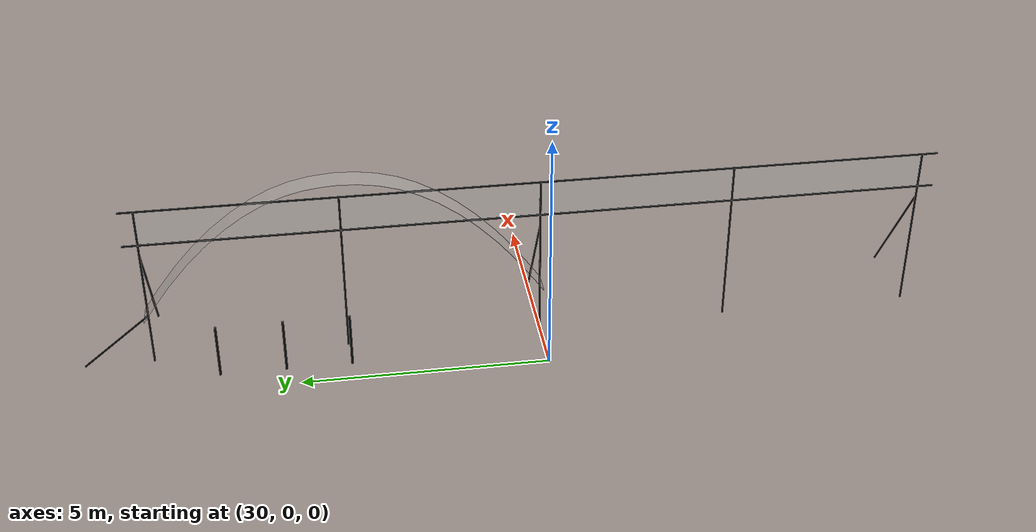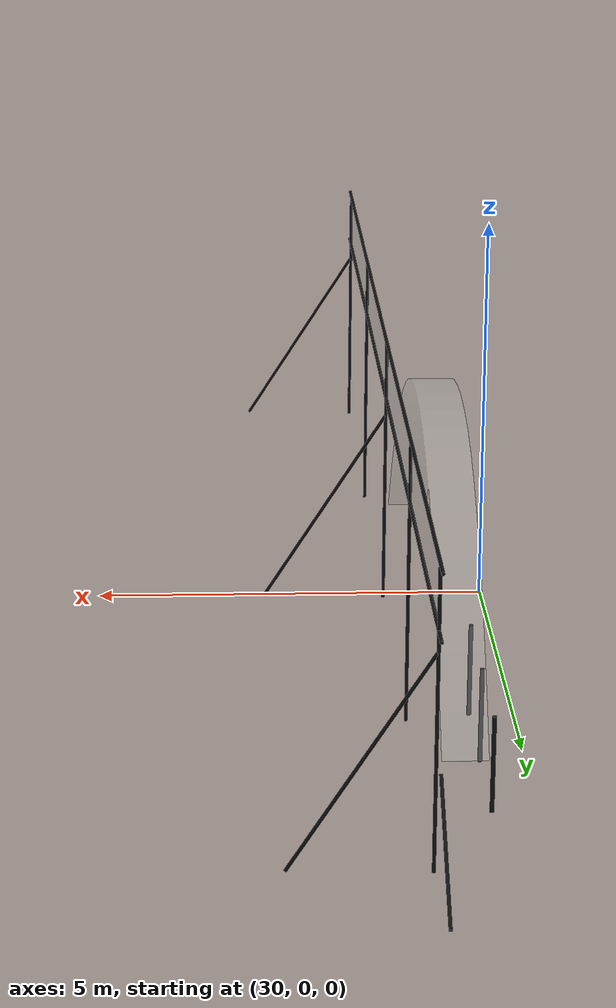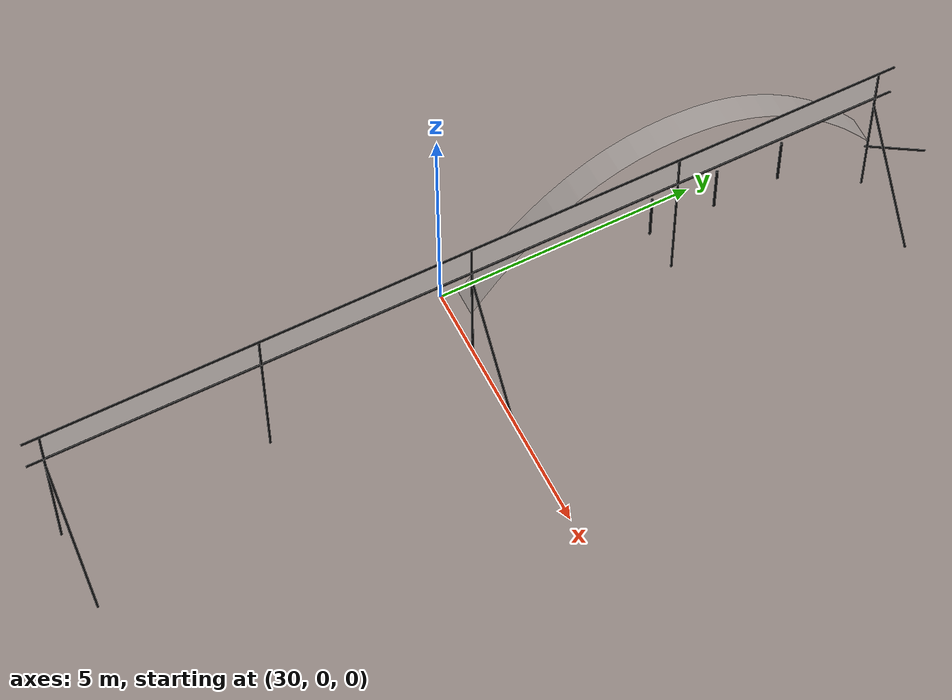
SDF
<sdf version="1.4">
 <world name="default">
  <model name="pole_87">
   <static>1</static>
   <pose>30.520 3.960 0.575 0.0 0.0 0.0</pose>
   <link name="link">
    <collision name="collision">
     <geometry><cylinder><length>1.15</length><radius>0.025</radius></cylinder></geometry>
    </collision>
    <visual name="visual">
     <geometry><cylinder><length>1.15</length><radius>0.025</radius></cylinder></geometry>
     <material>
      <script><uri>file://media/materials/scripts/gazebo.material</uri><name>Gazebo/Chrome</name></script>
      <shader type="vertex"><normal_map>__default__</normal_map></shader>
      <emissive>0.1 0.1 0.1 1</emissive>
      <specular>0.01 0.01 0.01 1</specular>
      <ambient>0.5 0.5 0.5 1</ambient>
      <diffuse>0.05 0.05 0.05 1</diffuse>
     </material>
    </visual>
   </link>
  </model>
  <model name="pole_88">
   <static>1</static>
   <pose>30.520 5.280 0.575 0.0 0.0 0.0</pose>
   <link name="link">
    <collision name="collision">
     <geometry><cylinder><length>1.15</length><radius>0.025</radius></cylinder></geometry>
    </collision>
    <visual name="visual">
     <geometry><cylinder><length>1.15</length><radius>0.025</radius></cylinder></geometry>
     <material>
      <script><uri>file://media/materials/scripts/gazebo.material</uri><name>Gazebo/Chrome</name></script>
      <shader type="vertex"><normal_map>__default__</normal_map></shader>
      <emissive>0.1 0.1 0.1 1</emissive>
      <specular>0.01 0.01 0.01 1</specular>
      <ambient>0.5 0.5 0.5 1</ambient>
      <diffuse>0.05 0.05 0.05 1</diffuse>
     </material>
    </visual>
   </link>
  </model>
  <model name="pole_89">
   <static>1</static>
   <pose>30.520 6.600 0.575 0.0 0.0 0.0</pose>
   <link name="link">
    <collision name="collision">
     <geometry><cylinder><length>1.15</length><radius>0.025</radius></cylinder></geometry>
    </collision>
    <visual name="visual">
     <geometry><cylinder><length>1.15</length><radius>0.025</radius></cylinder></geometry>
     <material>
      <script><uri>file://media/materials/scripts/gazebo.material</uri><name>Gazebo/Chrome</name></script>
      <shader type="vertex"><normal_map>__default__</normal_map></shader>
      <emissive>0.1 0.1 0.1 1</emissive>
      <specular>0.01 0.01 0.01 1</specular>
      <ambient>0.5 0.5 0.5 1</ambient>
      <diffuse>0.05 0.05 0.05 1</diffuse>
     </material>
    </visual>
   </link>
  </model>
  <model name="canopyhalfm_1">
   <static>1</static>
   <pose>30.720 0.000 -0.00 1.5707 0.0 1.5707</pose>
   <link name="link">
    <collision name="collision">
     <geometry><mesh><uri>model://canopyhalfm/canopyhalfm.stl</uri></mesh></geometry>
    </collision>
    <visual name="visual">
     <geometry><mesh><uri>model://canopyhalfm/canopyhalfm.stl</uri></mesh></geometry>
     <transparency>0.65</transparency>
    </visual>
   </link>
  </model>
  <model name="strut_17">
   <static>1</static>
   <pose>31.220 8.620 0.536 0.896 0.0 0.0</pose>
   <link name="link">
    <collision name="collision">
     <geometry><cylinder><length>1.76</length><radius>0.02</radius></cylinder></geometry>
    </collision>
    <visual name="visual">
     <geometry><cylinder><length>1.76</length><radius>0.02</radius></cylinder></geometry>
     <material>
      <script><uri>file://media/materials/scripts/gazebo.material</uri><name>Gazebo/Chrome</name></script>
      <shader type="vertex"><normal_map>__default__</normal_map></shader>
      <emissive>0.1 0.1 0.1 1</emissive>
      <specular>0.01 0.01 0.01 1</specular>
      <ambient>0.5 0.5 0.5 1</ambient>
      <diffuse>0.05 0.05 0.05 1</diffuse>
     </material>
    </visual>
   </link>
  </model>
  <model name="frontage_1">
   <static>1</static>
   <pose>37.950 -0.007 0.0 0.0 0.0 3.141</pose>
   <link name="link_1">
    <collision name="collision">
     <geometry><cylinder><length>3.5</length><radius>0.02</radius></cylinder></geometry>
    </collision>
    <visual name="visual">
     <geometry><cylinder><length>3.5</length><radius>0.02</radius></cylinder></geometry>
     <material>
      <script><uri>file://media/materials/scripts/gazebo.material</uri><name>Gazebo/Chrome</name></script>
      <shader type="vertex"><normal_map>__default__</normal_map></shader>
      <emissive>0.1 0.1 0.1 1</emissive>
      <specular>0.01 0.01 0.01 1</specular>
      <ambient>0.5 0.5 0.5 1</ambient>
      <diffuse>0.05 0.05 0.05 1</diffuse>
     </material>
    </visual>
    <pose>6.68 -7.94 1.7 0.0 0.0 0.0</pose>
   </link>
   <link name="link_2">
    <collision name="collision">
     <geometry><cylinder><length>3.5</length><radius>0.02</radius></cylinder></geometry>
    </collision>
    <visual name="visual">
     <geometry><cylinder><length>3.5</length><radius>0.02</radius></cylinder></geometry>
     <material>
      <script><uri>file://media/materials/scripts/gazebo.material</uri><name>Gazebo/Chrome</name></script>
      <shader type="vertex"><normal_map>__default__</normal_map></shader>
      <emissive>0.1 0.1 0.1 1</emissive>
      <specular>0.01 0.01 0.01 1</specular>
      <ambient>0.5 0.5 0.5 1</ambient>
      <diffuse>0.05 0.05 0.05 1</diffuse>
     </material>
    </visual>
    <pose>6.68 0 1.7 0.0 0.0 0.0</pose>
   </link>
   <link name="link_3">
    <collision name="collision">
     <geometry><cylinder><length>3.5</length><radius>0.02</radius></cylinder></geometry>
    </collision>
    <visual name="visual">
     <geometry><cylinder><length>3.5</length><radius>0.02</radius></cylinder></geometry>
     <material>
      <script><uri>file://media/materials/scripts/gazebo.material</uri><name>Gazebo/Chrome</name></script>
      <shader type="vertex"><normal_map>__default__</normal_map></shader>
      <emissive>0.1 0.1 0.1 1</emissive>
      <specular>0.01 0.01 0.01 1</specular>
      <ambient>0.5 0.5 0.5 1</ambient>
      <diffuse>0.05 0.05 0.05 1</diffuse>
     </material>
    </visual>
    <pose>6.68 7.93 1.7 0.0 0.0 0.0</pose>
   </link>
   <link name="link_10">
    <collision name="collision">
     <geometry><cylinder><length>3.5</length><radius>0.02</radius></cylinder></geometry>
    </collision>
    <visual name="visual">
     <geometry><cylinder><length>3.5</length><radius>0.02</radius></cylinder></geometry>
     <material>
      <script><uri>file://media/materials/scripts/gazebo.material</uri><name>Gazebo/Chrome</name></script>
      <shader type="vertex"><normal_map>__default__</normal_map></shader>
      <emissive>0.1 0.1 0.1 1</emissive>
      <specular>0.01 0.01 0.01 1</specular>
      <ambient>0.5 0.5 0.5 1</ambient>
      <diffuse>0.05 0.05 0.05 1</diffuse>
     </material>
    </visual>
    <pose>6.68 -4 1.7 0.0 0.0 0.0</pose>
   </link>
   <link name="link_11">
    <collision name="collision">
     <geometry><cylinder><length>3.5</length><radius>0.02</radius></cylinder></geometry>
    </collision>
    <visual name="visual">
     <geometry><cylinder><length>3.5</length><radius>0.02</radius></cylinder></geometry>
     <material>
      <script><uri>file://media/materials/scripts/gazebo.material</uri><name>Gazebo/Chrome</name></script>
      <shader type="vertex"><normal_map>__default__</normal_map></shader>
      <emissive>0.1 0.1 0.1 1</emissive>
      <specular>0.01 0.01 0.01 1</specular>
      <ambient>0.5 0.5 0.5 1</ambient>
      <diffuse>0.05 0.05 0.05 1</diffuse>
     </material>
    </visual>
    <pose>6.68 3.96 1.7 0.0 0.0 0.0</pose>
   </link>
   <link name="link_4">
    <collision name="collision">
     <geometry><cylinder><length>16.5</length><radius>0.02</radius></cylinder></geometry>
    </collision>
    <visual name="visual">
     <geometry><cylinder><length>16.5</length><radius>0.02</radius></cylinder></geometry>
     <material>
      <script><uri>file://media/materials/scripts/gazebo.material</uri><name>Gazebo/Chrome</name></script>
      <shader type="vertex"><normal_map>__default__</normal_map></shader>
      <emissive>0.1 0.1 0.1 1</emissive>
      <specular>0.01 0.01 0.01 1</specular>
      <ambient>0.5 0.5 0.5 1</ambient>
      <diffuse>0.05 0.05 0.05 1</diffuse>
     </material>
    </visual>
    <pose>6.68 0 2.7 1.5707 0.0 0.0</pose>
   </link>
   <link name="link_5">
    <collision name="collision">
     <geometry><cylinder><length>16.5</length><radius>0.02</radius></cylinder></geometry>
    </collision>
    <visual name="visual">
     <geometry><cylinder><length>16.5</length><radius>0.02</radius></cylinder></geometry>
     <material>
      <script><uri>file://media/materials/scripts/gazebo.material</uri><name>Gazebo/Chrome</name></script>
      <shader type="vertex"><normal_map>__default__</normal_map></shader>
      <emissive>0.1 0.1 0.1 1</emissive>
      <specular>0.01 0.01 0.01 1</specular>
      <ambient>0.5 0.5 0.5 1</ambient>
      <diffuse>0.05 0.05 0.05 1</diffuse>
     </material>
    </visual>
    <pose>6.68 0 3.45 1.5707 0.0 0.0</pose>
   </link>
   <link name="link_6">
    <collision name="collision">
     <geometry><cylinder><length>2.93</length><radius>0.02</radius></cylinder></geometry>
    </collision>
    <visual name="visual">
     <geometry><cylinder><length>2.93</length><radius>0.02</radius></cylinder></geometry>
     <material>
      <script><uri>file://media/materials/scripts/gazebo.material</uri><name>Gazebo/Chrome</name></script>
      <shader type="vertex"><normal_map>__default__</normal_map></shader>
      <emissive>0.1 0.1 0.1 1</emissive>
      <specular>0.01 0.01 0.01 1</specular>
      <ambient>0.5 0.5 0.5 1</ambient>
      <diffuse>0.05 0.05 0.05 1</diffuse>
     </material>
    </visual>
    <pose>5.89 -7.94 1.225 0 0.565 0.0</pose>
   </link>
   <link name="link_7">
    <collision name="collision">
     <geometry><cylinder><length>2.93</length><radius>0.02</radius></cylinder></geometry>
    </collision>
    <visual name="visual">
     <geometry><cylinder><length>2.93</length><radius>0.02</radius></cylinder></geometry>
     <material>
      <script><uri>file://media/materials/scripts/gazebo.material</uri><name>Gazebo/Chrome</name></script>
      <shader type="vertex"><normal_map>__default__</normal_map></shader>
      <emissive>0.1 0.1 0.1 1</emissive>
      <specular>0.01 0.01 0.01 1</specular>
      <ambient>0.5 0.5 0.5 1</ambient>
      <diffuse>0.05 0.05 0.05 1</diffuse>
     </material>
    </visual>
    <pose>5.89 0 1.225 0 0.565 0.0</pose>
   </link>
   <link name="link_8">
    <collision name="collision">
     <geometry><cylinder><length>2.93</length><radius>0.02</radius></cylinder></geometry>
    </collision>
    <visual name="visual">
     <geometry><cylinder><length>2.93</length><radius>0.02</radius></cylinder></geometry>
     <material>
      <script><uri>file://media/materials/scripts/gazebo.material</uri><name>Gazebo/Chrome</name></script>
      <shader type="vertex"><normal_map>__default__</normal_map></shader>
      <emissive>0.1 0.1 0.1 1</emissive>
      <specular>0.01 0.01 0.01 1</specular>
      <ambient>0.5 0.5 0.5 1</ambient>
      <diffuse>0.05 0.05 0.05 1</diffuse>
     </material>
    </visual>
    <pose>5.89 7.93 1.225 0 0.565 0.0</pose>
   </link>
   <link name="link_9">
    <collision name="collision"><geometry><box><size>0.002 15.87 0.75</size></box></geometry></collision>
    <visual name="visual">
     <geometry><box><size>0.002 15.87 0.75</size></box></geometry>
     <material>
      <emissive>1 1 1 1</emissive>
      <shader type="vertex"><normal_map>__default__</normal_map></shader>
      <specular>1 1 1 1</specular>
      <lighting>1</lighting>
      <ambient>1 1 1 1</ambient>
      <diffuse>1 1 1 1</diffuse>
     </material>
     <transparency>0.65</transparency>
    </visual>
    <pose>6.68 0 3.075 0 0 0</pose>
   </link>
  </model>
  <include><uri>model://sun</uri></include>
 </world>
</sdf>
